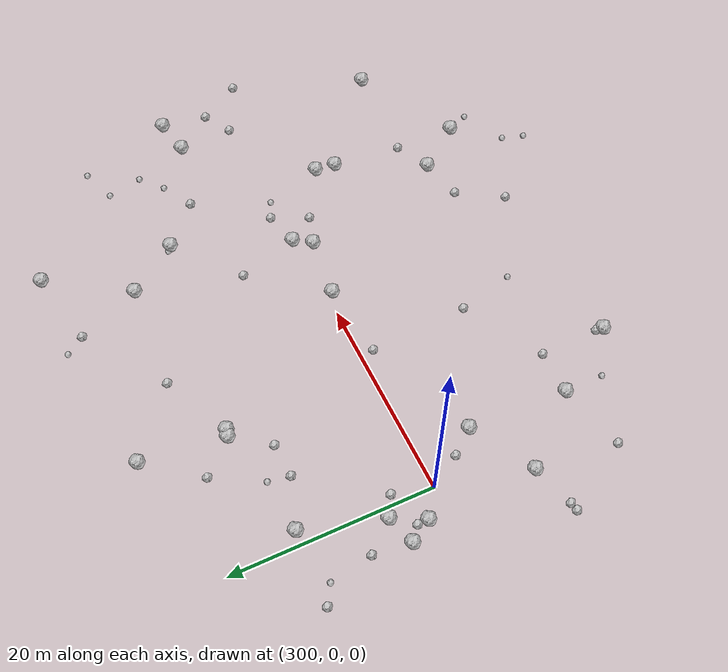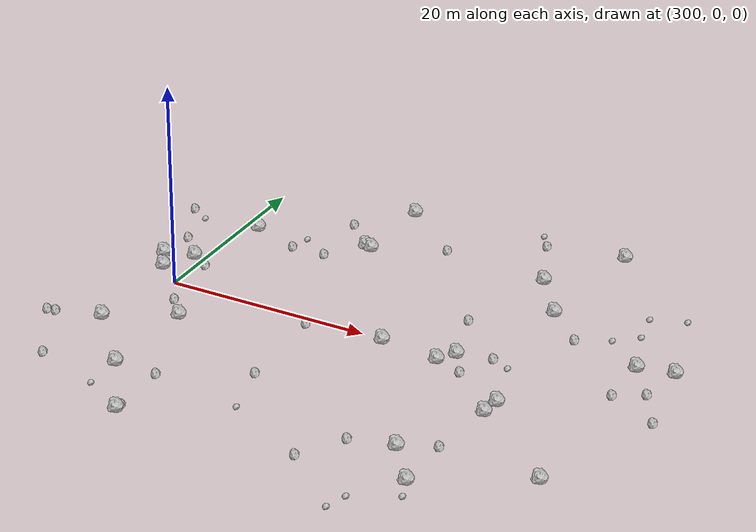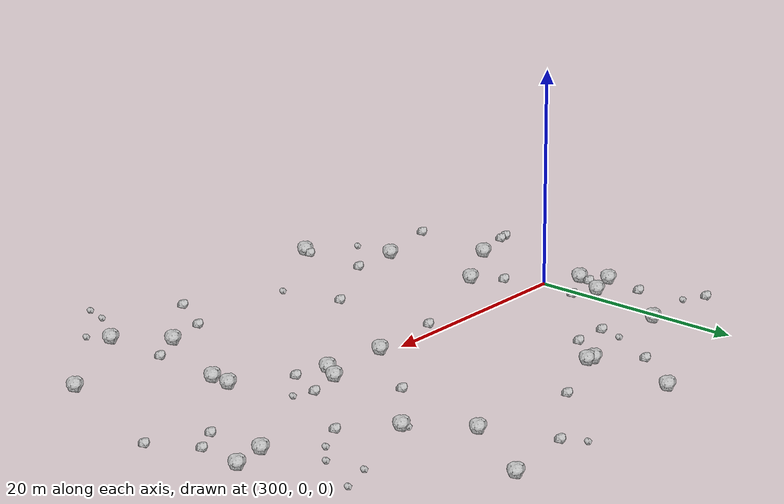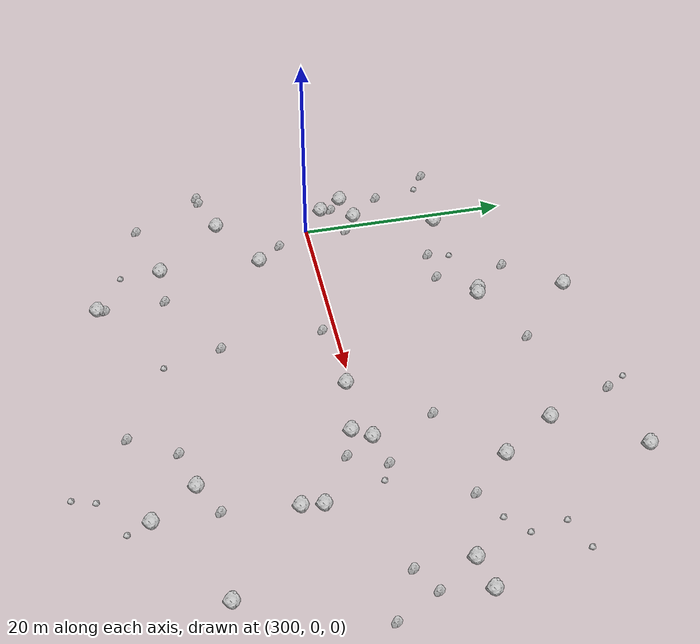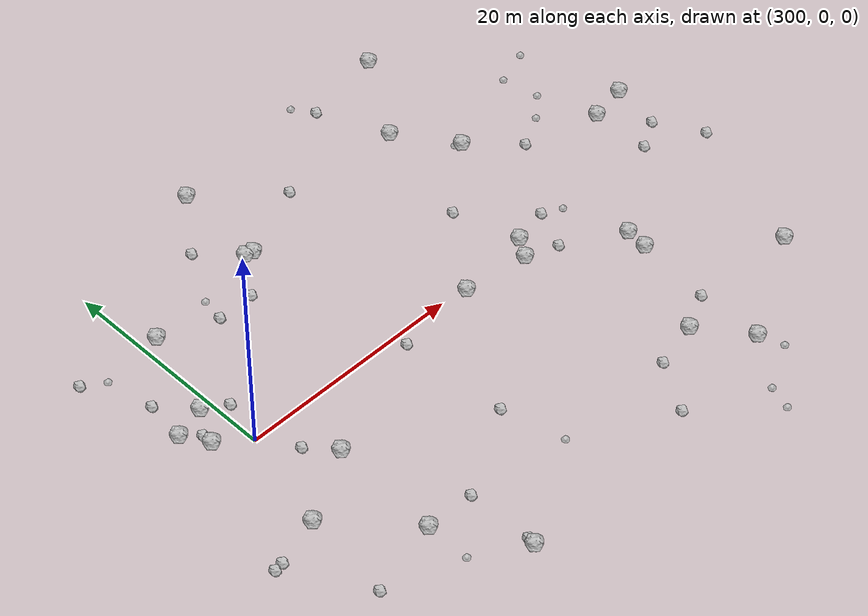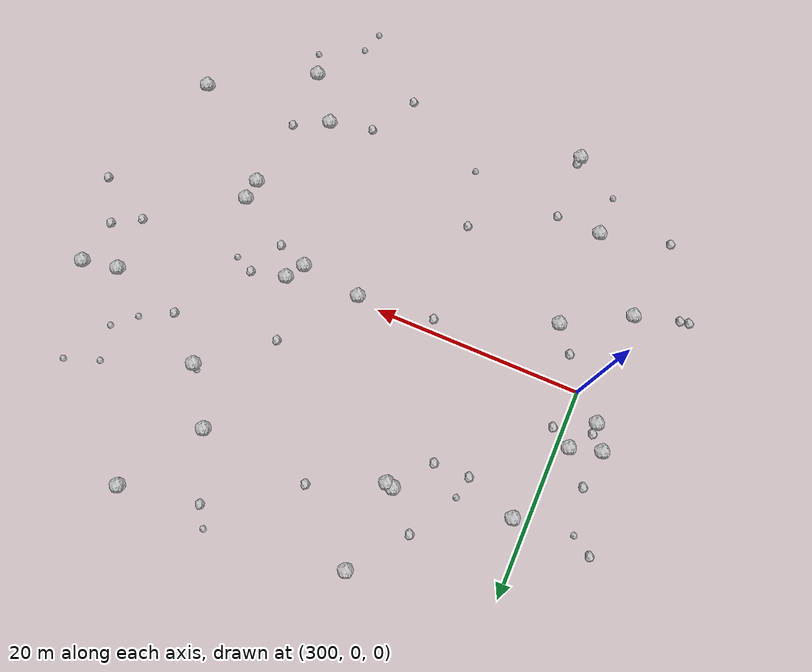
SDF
<sdf version="1.6">
 <world name="default">
  <include><uri>model://sun</uri></include>
  <model name="rock1_8_3">
   <include><uri>model://rock1</uri><pose>333.7391438588855 11.462593881903715 0.5 0 0 0</pose></include>
  </model>
  <model name="rock1_8_4">
   <include><uri>model://rock1</uri><pose>336.0927462321087 -5.196349619315139 0.5 0 0 0</pose></include>
  </model>
  <model name="rock1_8_5">
   <include><uri>model://rock1</uri><pose>303.87441702565894 -5.444910324850021 0.5 0 0 0</pose></include>
  </model>
  <model name="rock1_8_6">
   <include><uri>model://rock1</uri><pose>313.3439329945824 22.945086831009228 0.5 0 0 0</pose></include>
  </model>
  <model name="rock1_8_7">
   <include><uri>model://rock1</uri><pose>299.01222956332447 5.0472510496100185 0.5 0 0 0</pose></include>
  </model>
  <model name="rock1_8_8">
   <include><uri>model://rock1</uri><pose>328.1806763902386 -1.2336235754793776 0.5 0 0 0</pose></include>
  </model>
  <model name="rock1_8_9">
   <include><uri>model://rock1</uri><pose>335.0351148984794 -19.857389579508364 0.5 0 0 0</pose></include>
  </model>
  <model name="rock1_8_10">
   <include><uri>model://rock1</uri><pose>313.0020939017884 14.463055530137751 0.5 0 0 0</pose></include>
  </model>
  <model name="rock1_8_11">
   <include><uri>model://rock1</uri><pose>296.100539626522 4.189293244910942 0.5 0 0 0</pose></include>
  </model>
  <model name="rock1_8_12">
   <include><uri>model://rock1</uri><pose>312.3264317042043 14.642733933806788 0.5 0 0 0</pose></include>
  </model>
  <model name="rock1_8_13">
   <include><uri>model://rock1</uri><pose>335.19504096358276 24.194451443404326 0.5 0 0 0</pose></include>
  </model>
  <model name="rock1_8_14">
   <include><uri>model://rock1</uri><pose>329.28967511623785 0.4665745425600569 0.5 0 0 0</pose></include>
  </model>
  <model name="rock1_8_15">
   <include><uri>model://rock1</uri><pose>347.7612576964 6.5935090953237605 0.5 0 0 0</pose></include>
  </model>
  <model name="rock1_8_16">
   <include><uri>model://rock1</uri><pose>297.7371647757034 -8.860501302650974 0.5 0 0 0</pose></include>
  </model>
  <model name="rock1_8_17">
   <include><uri>model://rock1</uri><pose>335.86176304047456 -7.192921598379744 0.5 0 0 0</pose></include>
  </model>
  <model name="rock1_8_18">
   <include><uri>model://rock1</uri><pose>331.82748622753934 -15.587936432307146 0.5 0 0 0</pose></include>
  </model>
  <model name="rock1_8_19">
   <include><uri>model://rock1</uri><pose>307.8345081475155 -21.811695201064616 0.5 0 0 0</pose></include>
  </model>
  <model name="rock1_8_20">
   <include><uri>model://rock1</uri><pose>322.285753728988 -0.4903623320160513 0.5 0 0 0</pose></include>
  </model>
  <model name="rock1_8_21">
   <include><uri>model://rock1</uri><pose>303.45049013465285 -15.242561615087276 0.5 0 0 0</pose></include>
  </model>
  <model name="rock1_8_22">
   <include><uri>model://rock1</uri><pose>344.59983343690385 -14.463319399712624 0.5 0 0 0</pose></include>
  </model>
  <model name="rock1_8_23">
   <include><uri>model://rock1</uri><pose>301.4162374714585 12.902421051470824 0.5 0 0 0</pose></include>
  </model>
  <model name="rock1_8_24">
   <include><uri>model://rock1</uri><pose>344.3265453557407 5.946316571766836 0.5 0 0 0</pose></include>
  </model>
  <model name="rock1_8_25">
   <include><uri>model://rock1</uri><pose>297.4373806428201 1.9585133808500963 0.5 0 0 0</pose></include>
  </model>
  <model name="rock1_8_26">
   <include><uri>model://rock1</uri><pose>330.28991837800794 16.539923202452307 0.5 0 0 0</pose></include>
  </model>
  <model name="rock2_8_0">
   <include><uri>model://rock2</uri><pose>315.30109901103447 -10.974549072362919 0.3 0 0 0</pose></include>
  </model>
  <model name="rock2_8_1">
   <include><uri>model://rock2</uri><pose>292.6714315944283 -10.213108845694805 0.3 0 0 0</pose></include>
  </model>
  <model name="rock2_8_2">
   <include><uri>model://rock2</uri><pose>296.5214208667434 7.909654638775024 0.3 0 0 0</pose></include>
  </model>
  <model name="rock2_8_3">
   <include><uri>model://rock2</uri><pose>307.89831775470327 -21.079539370391608 0.3 0 0 0</pose></include>
  </model>
  <model name="rock2_8_4">
   <include><uri>model://rock2</uri><pose>344.32732587328735 0.6402403354955943 0.3 0 0 0</pose></include>
  </model>
  <model name="rock2_8_5">
   <include><uri>model://rock2</uri><pose>309.70867386842974 11.163226600569232 0.3 0 0 0</pose></include>
  </model>
  <model name="rock2_8_6">
   <include><uri>model://rock2</uri><pose>296.81397698446665 -16.862272126165276 0.3 0 0 0</pose></include>
  </model>
  <model name="rock2_8_7">
   <include><uri>model://rock2</uri><pose>327.5305937367764 6.4052870655633996 0.3 0 0 0</pose></include>
  </model>
  <model name="rock2_8_8">
   <include><uri>model://rock2</uri><pose>300.9516574265687 3.8746420987708063 0.3 0 0 0</pose></include>
  </model>
  <model name="rock2_8_9">
   <include><uri>model://rock2</uri><pose>306.3177466684886 11.085444511056714 0.3 0 0 0</pose></include>
  </model>
  <model name="rock2_8_10">
   <include><uri>model://rock2</uri><pose>325.0319826862883 -20.828568318905262 0.3 0 0 0</pose></include>
  </model>
  <model name="rock2_8_11">
   <include><uri>model://rock2</uri><pose>346.9564016148744 2.17368236187982 0.3 0 0 0</pose></include>
  </model>
  <model name="rock2_8_12">
   <include><uri>model://rock2</uri><pose>327.63918770538965 -16.535481816192295 0.3 0 0 0</pose></include>
  </model>
  <model name="rock2_8_13">
   <include><uri>model://rock2</uri><pose>330.9933230302286 -2.199248317418558 0.3 0 0 0</pose></include>
  </model>
  <model name="rock2_8_14">
   <include><uri>model://rock2</uri><pose>297.39763405515566 3.0332126327813214 0.3 0 0 0</pose></include>
  </model>
  <model name="rock2_8_15">
   <include><uri>model://rock2</uri><pose>332.5740154232187 1.27405966130992 0.3 0 0 0</pose></include>
  </model>
  <model name="rock2_8_16">
   <include><uri>model://rock2</uri><pose>301.9133546965341 -3.0899575400711186 0.3 0 0 0</pose></include>
  </model>
  <model name="rock2_8_17">
   <include><uri>model://rock2</uri><pose>309.3116417095791 17.869341534299693 0.3 0 0 0</pose></include>
  </model>
  <model name="rock2_8_18">
   <include><uri>model://rock2</uri><pose>314.8387950940126 -1.2193340038733638 0.3 0 0 0</pose></include>
  </model>
  <model name="rock2_8_19">
   <include><uri>model://rock2</uri><pose>293.5089503395473 -10.078951917861477 0.3 0 0 0</pose></include>
  </model>
  <model name="rock2_8_20">
   <include><uri>model://rock2</uri><pose>349.26705499042686 -1.8955185248087218 0.3 0 0 0</pose></include>
  </model>
  <model name="rock2_8_21">
   <include><uri>model://rock2</uri><pose>293.9034023446982 13.361418541673828 0.3 0 0 0</pose></include>
  </model>
  <model name="rock2_8_22">
   <include><uri>model://rock2</uri><pose>337.4724328999382 7.773584450315177 0.3 0 0 0</pose></include>
  </model>
  <model name="rock2_8_23">
   <include><uri>model://rock2</uri><pose>327.65461694719795 22.818721244278557 0.3 0 0 0</pose></include>
  </model>
  <model name="rock2_8_24">
   <include><uri>model://rock2</uri><pose>335.03936847579195 -13.921907170587147 0.3 0 0 0</pose></include>
  </model>
  <model name="rock2_8_25">
   <include><uri>model://rock2</uri><pose>307.74243058856905 -15.298709762105728 0.3 0 0 0</pose></include>
  </model>
  <model name="rock2_8_26">
   <include><uri>model://rock2</uri><pose>319.6743977934778 17.477947225737495 0.3 0 0 0</pose></include>
  </model>
  <model name="rock3_8_0">
   <include><uri>model://rock3</uri><pose>333.2115691626385 11.822781707636032 0.2 0 0 0</pose></include>
  </model>
  <model name="rock3_8_1">
   <include><uri>model://rock3</uri><pose>306.6843224664986 13.183717376845593 0.2 0 0 0</pose></include>
  </model>
  <model name="rock3_8_2">
   <include><uri>model://rock3</uri><pose>303.4322684283385 -19.16373204136432 0.2 0 0 0</pose></include>
  </model>
  <model name="rock3_8_3">
   <include><uri>model://rock3</uri><pose>295.7616220128784 12.159171295738332 0.2 0 0 0</pose></include>
  </model>
  <model name="rock3_8_4">
   <include><uri>model://rock3</uri><pose>334.32379328740797 0.4468122129722971 0.2 0 0 0</pose></include>
  </model>
  <model name="rock3_8_5">
   <include><uri>model://rock3</uri><pose>342.4714826260623 11.17734602343257 0.2 0 0 0</pose></include>
  </model>
  <model name="rock3_8_6">
   <include><uri>model://rock3</uri><pose>340.4289553772093 9.363377464168899 0.2 0 0 0</pose></include>
  </model>
  <model name="rock3_8_7">
   <include><uri>model://rock3</uri><pose>316.68602912541013 -16.529520290724275 0.2 0 0 0</pose></include>
  </model>
  <model name="rock3_8_8">
   <include><uri>model://rock3</uri><pose>335.788902791573 -21.98352242211122 0.2 0 0 0</pose></include>
  </model>
  <model name="rock3_8_9">
   <include><uri>model://rock3</uri><pose>341.835995677028 14.560443670610049 0.2 0 0 0</pose></include>
  </model>
  <model name="rock3_8_10">
   <include><uri>model://rock3</uri><pose>331.05984038541334 -26.26374808243267 0.2 0 0 0</pose></include>
  </model>
  <model name="rock3_8_11">
   <include><uri>model://rock3</uri><pose>331.71868255555887 -24.170943469870267 0.2 0 0 0</pose></include>
  </model>
  <model name="rock3_8_12">
   <include><uri>model://rock3</uri><pose>326.44173124424924 24.63732427152427 0.2 0 0 0</pose></include>
  </model>
  <model name="rock3_8_13">
   <include><uri>model://rock3</uri><pose>345.0907680407526 15.721041014808947 0.2 0 0 0</pose></include>
  </model>
 </world>
</sdf>
